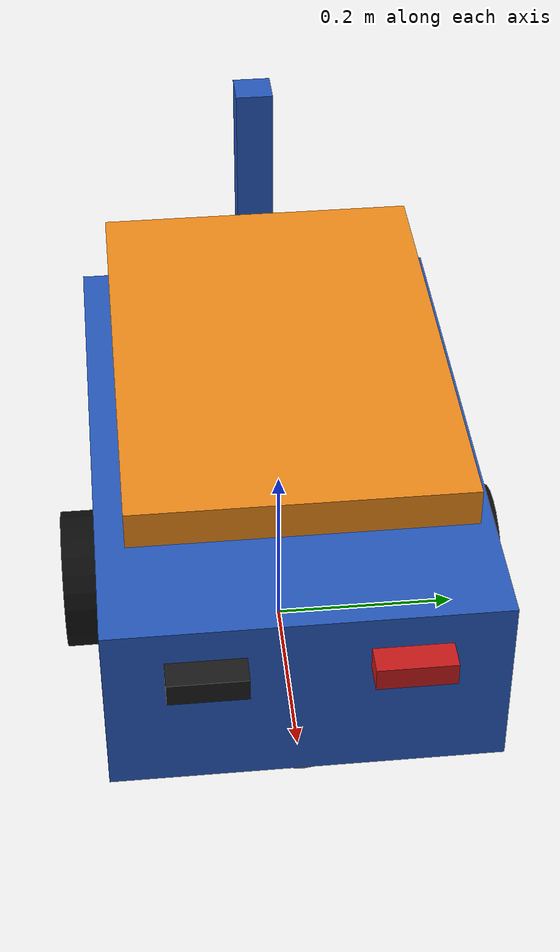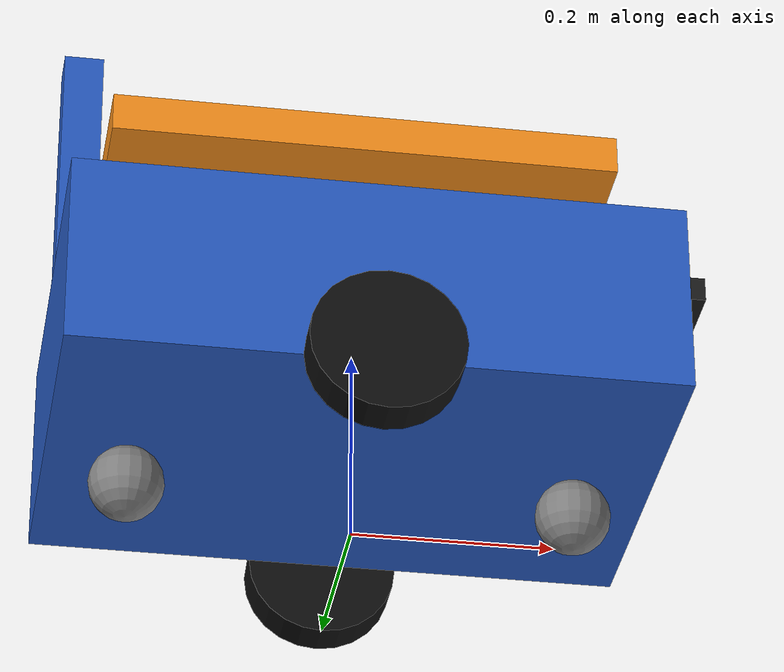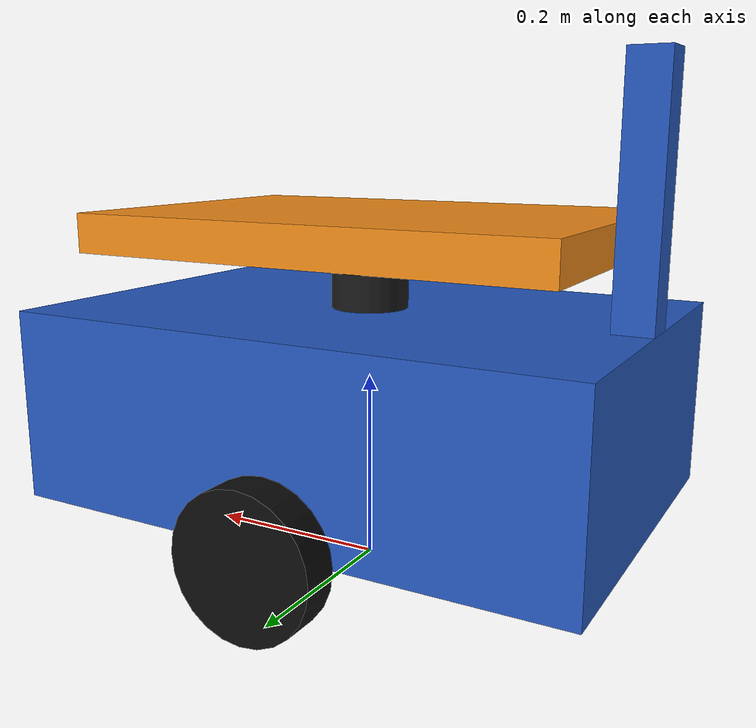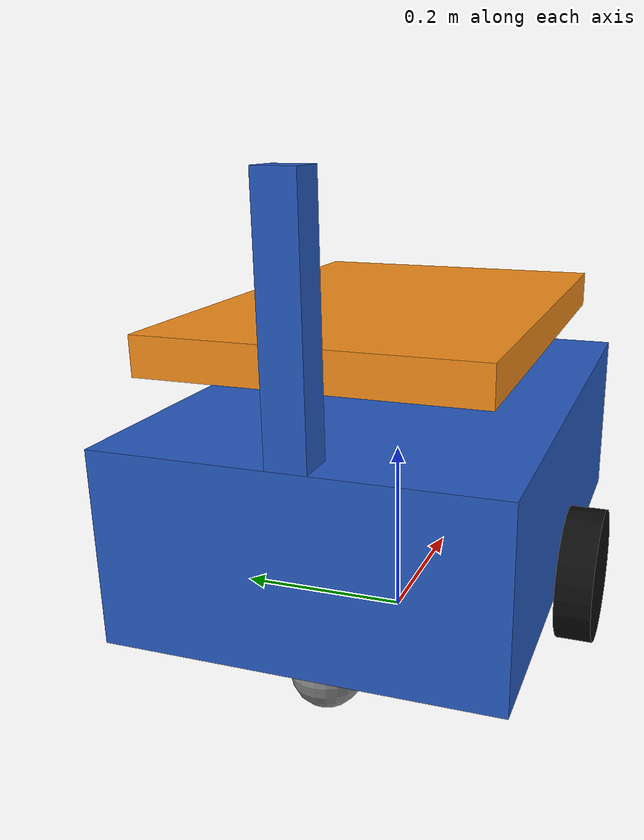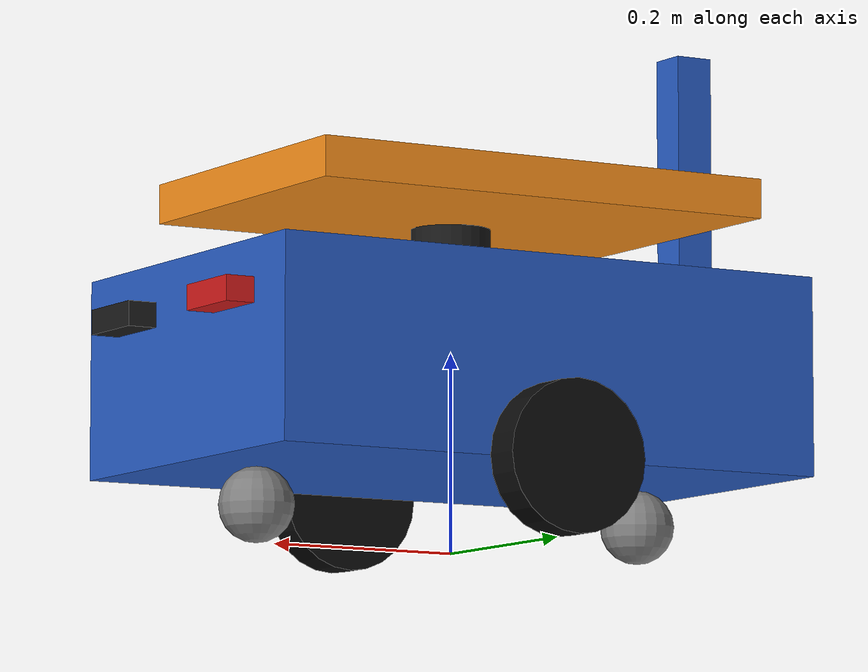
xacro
<?xml version="1.0"?>
<robot xmlns:xacro="http://www.ros.org/wiki/xacro" name="amr">

  <!-- Ortak makrolar ve sabitler -->
  <xacro:include filename="$(find robot_description)/urdf/common/properties.xacro"/>
  <xacro:include filename="$(find robot_description)/urdf/common/materials.xacro"/>
  <xacro:include filename="$(find robot_description)/urdf/common/inertial_macros.xacro"/>

  <!-- Mekanik parçalar -->
  <xacro:include filename="$(find robot_description)/urdf/base/base.xacro"/>
  <xacro:include filename="$(find robot_description)/urdf/wheels/wheels.xacro"/>
  <xacro:include filename="$(find robot_description)/urdf/lift/lift.xacro"/>

  <!-- Sensörler -->
  <xacro:include filename="$(find robot_description)/urdf/sensors/imu.xacro"/>
  <xacro:include filename="$(find robot_description)/urdf/sensors/lidar.xacro"/>
  <xacro:include filename="$(find robot_description)/urdf/sensors/rgb_camera.xacro"/>
  <xacro:include filename="$(find robot_description)/urdf/sensors/depth_camera.xacro"/>

  <!-- ros2_control + ign_ros2_control plugin (cmd_vel, odom, lift, joint_states) -->
  <xacro:include filename="$(find robot_description)/urdf/control/ros2_control.xacro"/>

  <!-- Ground truth odom: Ignition OdometryPublisher → /ground_truth/odom -->
  <xacro:include filename="$(find robot_description)/urdf/gazebo/gazebo_ground_truth.xacro"/>

</robot>

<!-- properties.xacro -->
<robot xmlns:xacro="http://www.ros.org/wiki/xacro">

  <!-- Robot adı (topic prefixleri için) -->
  <xacro:property name="robot_name" value="amr"/>

  <!-- Şasi (base) -->
  <xacro:property name="base_length" value="0.60"/>
  <xacro:property name="base_width"  value="0.40"/>
  <xacro:property name="base_height" value="0.20"/>
  <xacro:property name="base_mass"   value="15.0"/>

  <!-- Tahrik tekerlekleri -->
  <xacro:property name="wheel_radius"     value="0.075"/>
  <xacro:property name="wheel_width"      value="0.04"/>
  <xacro:property name="wheel_mass"       value="0.5"/>
  <xacro:property name="wheel_separation" value="0.44"/>  <!-- base_width(0.40) + wheel_width(0.04): iç kenar tam base kenarında -->
  <xacro:property name="wheel_x_offset"   value="0.0"/>

  <!-- Caster (topuk) tekerlekleri (önde ve arkada küresel destek) -->
  <xacro:property name="caster_radius" value="0.0375"/>  <!-- wheel_radius/2: üst yüzey chassis altına tam değer, alt yüzey zemine tam değer -->
  <xacro:property name="caster_mass"   value="0.1"/>
  <xacro:property name="caster_x_offset" value="0.22"/>

  <!-- Lift platformu -->
  <xacro:property name="lift_length" value="0.50"/>
  <xacro:property name="lift_width"  value="0.34"/>
  <xacro:property name="lift_height" value="0.04"/>
  <xacro:property name="lift_mass"   value="2.0"/>
  <xacro:property name="lift_min"    value="0.0"/>
  <xacro:property name="lift_max"    value="0.15"/>
  <xacro:property name="lift_effort" value="200.0"/>
  <xacro:property name="lift_velocity" value="0.1"/>

  <!-- Lift başlangıç ofseti: lidar_height(0.05) + boşluk(0.01) = 0.06 -->
  <!-- Lift platformu zemine göre: base_height + lift_z_offset = 0.26'dan başlar -->
  <xacro:property name="lift_z_offset" value="0.06"/>

  <!-- Lift kolonu (chassis üstünden max lift pozisyonuna kadar uzanan direk) -->
  <xacro:property name="lift_column_size"   value="0.04"/>
  <xacro:property name="lift_column_mass"   value="0.5"/>
  <xacro:property name="lift_column_height" value="${lift_z_offset + lift_max + lift_height}"/>

  <!-- LiDAR (2D) -->
  <xacro:property name="lidar_radius" value="0.04"/>
  <xacro:property name="lidar_height" value="0.05"/>
  <xacro:property name="lidar_mass"   value="0.15"/>

  <!-- IMU -->
  <xacro:property name="imu_size" value="0.03"/>
  <xacro:property name="imu_mass" value="0.05"/>

  <!-- Kameralar (RGB ve derinlik aynı boyutta basit kutu) -->
  <xacro:property name="cam_length" value="0.03"/>
  <xacro:property name="cam_width"  value="0.08"/>
  <xacro:property name="cam_height" value="0.025"/>
  <xacro:property name="cam_mass"   value="0.08"/>

</robot>

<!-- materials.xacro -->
<robot xmlns:xacro="http://www.ros.org/wiki/xacro">

  <material name="chassis_blue">
    <color rgba="0.15 0.35 0.75 1.0"/>
  </material>

  <material name="lift_orange">
    <color rgba="0.95 0.55 0.10 1.0"/>
  </material>

  <material name="wheel_black">
    <color rgba="0.05 0.05 0.05 1.0"/>
  </material>

  <material name="caster_grey">
    <color rgba="0.50 0.50 0.50 1.0"/>
  </material>

  <material name="sensor_dark">
    <color rgba="0.10 0.10 0.10 1.0"/>
  </material>

  <material name="sensor_red">
    <color rgba="0.80 0.10 0.10 1.0"/>
  </material>

  <material name="sensor_green">
    <color rgba="0.10 0.70 0.20 1.0"/>
  </material>

</robot>

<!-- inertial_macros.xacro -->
<robot xmlns:xacro="http://www.ros.org/wiki/xacro">

  <xacro:macro name="inertial_box" params="mass x y z *origin">
    <inertial>
      <xacro:insert_block name="origin"/>
      <mass value="${mass}"/>
      <inertia
        ixx="${(1.0/12.0) * mass * (y*y + z*z)}" ixy="0.0" ixz="0.0"
        iyy="${(1.0/12.0) * mass * (x*x + z*z)}" iyz="0.0"
        izz="${(1.0/12.0) * mass * (x*x + y*y)}"/>
    </inertial>
  </xacro:macro>

  <xacro:macro name="inertial_cylinder" params="mass radius length *origin">
    <inertial>
      <xacro:insert_block name="origin"/>
      <mass value="${mass}"/>
      <inertia
        ixx="${(1.0/12.0) * mass * (3.0*radius*radius + length*length)}" ixy="0.0" ixz="0.0"
        iyy="${(1.0/12.0) * mass * (3.0*radius*radius + length*length)}" iyz="0.0"
        izz="${(1.0/2.0)  * mass * radius*radius}"/>
    </inertial>
  </xacro:macro>

  <xacro:macro name="inertial_sphere" params="mass radius *origin">
    <inertial>
      <xacro:insert_block name="origin"/>
      <mass value="${mass}"/>
      <inertia
        ixx="${(2.0/5.0) * mass * radius*radius}" ixy="0.0" ixz="0.0"
        iyy="${(2.0/5.0) * mass * radius*radius}" iyz="0.0"
        izz="${(2.0/5.0) * mass * radius*radius}"/>
    </inertial>
  </xacro:macro>

</robot>

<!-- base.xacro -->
<robot xmlns:xacro="http://www.ros.org/wiki/xacro">

  <link name="base_footprint"/>

  <link name="base_link"/>

  <joint name="base_footprint_joint" type="fixed">
    <parent link="base_footprint"/>
    <child  link="base_link"/>
    <origin xyz="0 0 ${wheel_radius}" rpy="0 0 0"/>
  </joint>

  <link name="chassis_link">
    <visual>
      <origin xyz="0 0 ${base_height/2}" rpy="0 0 0"/>
      <geometry>
        <box size="${base_length} ${base_width} ${base_height}"/>
      </geometry>
      <material name="chassis_blue"/>
    </visual>

    <collision>
      <origin xyz="0 0 ${base_height/2}" rpy="0 0 0"/>
      <geometry>
        <box size="${base_length} ${base_width} ${base_height}"/>
      </geometry>
    </collision>

    <xacro:inertial_box mass="${base_mass}"
                        x="${base_length}" y="${base_width}" z="${base_height}">
      <origin xyz="0 0 ${base_height/2}" rpy="0 0 0"/>
    </xacro:inertial_box>
  </link>

  <joint name="chassis_joint" type="fixed">
    <parent link="base_link"/>
    <child  link="chassis_link"/>
    <origin xyz="0 0 0" rpy="0 0 0"/>
  </joint>

</robot>

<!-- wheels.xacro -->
<robot xmlns:xacro="http://www.ros.org/wiki/xacro">

  <!--
    Tekerlek modülü.
    - 2 adet diferansiyel sürücü tekerleği (sol/sağ, base_link ekseninde)
    - 2 adet küresel caster (ön/arka, denge için)
  -->

  <xacro:macro name="drive_wheel" params="prefix y_reflect">
    <link name="${prefix}_wheel_link">
      <visual>
        <origin xyz="0 0 0" rpy="${pi/2} 0 0"/>
        <geometry>
          <cylinder radius="${wheel_radius}" length="${wheel_width}"/>
        </geometry>
        <material name="wheel_black"/>
      </visual>

      <collision>
        <origin xyz="0 0 0" rpy="${pi/2} 0 0"/>
        <geometry>
          <cylinder radius="${wheel_radius}" length="${wheel_width}"/>
        </geometry>
      </collision>

      <xacro:inertial_cylinder mass="${wheel_mass}"
                               radius="${wheel_radius}" length="${wheel_width}">
        <origin xyz="0 0 0" rpy="${pi/2} 0 0"/>
      </xacro:inertial_cylinder>
    </link>

    <joint name="${prefix}_wheel_joint" type="continuous">
      <parent link="base_link"/>
      <child  link="${prefix}_wheel_link"/>
      <origin xyz="${wheel_x_offset} ${y_reflect * wheel_separation/2} 0" rpy="0 0 0"/>
      <axis xyz="0 1 0"/>
      <dynamics damping="0.05" friction="0.05"/>
    </joint>

    <!-- Gazebo sürtünme parametreleri -->
    <gazebo reference="${prefix}_wheel_link">
      <mu1>1.0</mu1>
      <mu2>1.0</mu2>
      <kp>1000000.0</kp>
      <kd>100.0</kd>
    </gazebo>
  </xacro:macro>

  <xacro:drive_wheel prefix="left"  y_reflect="1"/>
  <xacro:drive_wheel prefix="right" y_reflect="-1"/>

  <xacro:macro name="caster_wheel" params="prefix x_reflect">
    <link name="${prefix}_caster_link">
      <visual>
        <origin xyz="0 0 0" rpy="0 0 0"/>
        <geometry>
          <sphere radius="${caster_radius}"/>
        </geometry>
        <material name="caster_grey"/>
      </visual>

      <collision>
        <origin xyz="0 0 0" rpy="0 0 0"/>
        <geometry>
          <sphere radius="${caster_radius}"/>
        </geometry>
      </collision>

      <xacro:inertial_sphere mass="${caster_mass}" radius="${caster_radius}">
        <origin xyz="0 0 0" rpy="0 0 0"/>
      </xacro:inertial_sphere>
    </link>

    <joint name="${prefix}_caster_joint" type="fixed">
      <parent link="base_link"/>
      <child  link="${prefix}_caster_link"/>
      <origin xyz="${x_reflect * caster_x_offset} 0 ${-(wheel_radius - caster_radius)}"
              rpy="0 0 0"/>
    </joint>

    <gazebo reference="${prefix}_caster_link">
      <mu1>0.001</mu1>
      <mu2>0.001</mu2>
    </gazebo>
  </xacro:macro>

  <xacro:caster_wheel prefix="front" x_reflect="1"/>
  <xacro:caster_wheel prefix="rear"  x_reflect="-1"/>

</robot>

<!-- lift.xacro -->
<robot xmlns:xacro="http://www.ros.org/wiki/xacro">

  <!-- Merkezi direk: en arkada, chassis_link'e sabit -->
  <link name="lift_column_link">
    <visual>
      <origin xyz="0 0 ${lift_column_height/2}" rpy="0 0 0"/>
      <geometry>
        <box size="${lift_column_size} ${lift_column_size} ${lift_column_height}"/>
      </geometry>
      <material name="chassis_blue"/>
    </visual>

    <collision>
      <origin xyz="0 0 ${lift_column_height/2}" rpy="0 0 0"/>
      <geometry>
        <box size="${lift_column_size} ${lift_column_size} ${lift_column_height}"/>
      </geometry>
    </collision>

    <xacro:inertial_box mass="${lift_column_mass}"
                        x="${lift_column_size}" y="${lift_column_size}" z="${lift_column_height}">
      <origin xyz="0 0 ${lift_column_height/2}" rpy="0 0 0"/>
    </xacro:inertial_box>
  </link>

  <joint name="lift_column_joint" type="fixed">
    <parent link="chassis_link"/>
    <child  link="lift_column_link"/>
    <!-- Kolon merkezi: base arka yüzünden lift_column_size/2 içeride, chassis üstünde -->
    <origin xyz="${-(base_length/2 - lift_column_size/2)} 0 ${base_height}" rpy="0 0 0"/>
  </joint>

  <!-- Lift platformu: kolon ön yüzüne temas eden arka kenarıyla öne doğru uzanır -->
  <link name="lift_link">
    <visual>
      <origin xyz="0 0 ${lift_height/2}" rpy="0 0 0"/>
      <geometry>
        <box size="${lift_length} ${lift_width} ${lift_height}"/>
      </geometry>
      <material name="lift_orange"/>
    </visual>

    <collision>
      <origin xyz="0 0 ${lift_height/2}" rpy="0 0 0"/>
      <geometry>
        <box size="${lift_length} ${lift_width} ${lift_height}"/>
      </geometry>
    </collision>

    <xacro:inertial_box mass="${lift_mass}"
                        x="${lift_length}" y="${lift_width}" z="${lift_height}">
      <origin xyz="0 0 ${lift_height/2}" rpy="0 0 0"/>
    </xacro:inertial_box>
  </link>

  <joint name="lift_joint" type="prismatic">
    <parent link="chassis_link"/>
    <child  link="lift_link"/>
    <!-- x: kolon ön yüzeyi(-0.26) + lift_length/2(0.25) = -0.01 -->
    <origin xyz="${lift_length/2 - base_length/2 + lift_column_size} 0 ${base_height + lift_z_offset}"
            rpy="0 0 0"/>
    <axis xyz="0 0 1"/>
    <limit lower="${lift_min}" upper="${lift_max}"
           effort="${lift_effort}" velocity="${lift_velocity}"/>
    <dynamics damping="5.0" friction="0.5"/>
  </joint>

</robot>

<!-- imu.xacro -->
<robot xmlns:xacro="http://www.ros.org/wiki/xacro">

  <!--
    IMU sensörü. Şasinin merkezine, geometri merkezine yakın yerleştirilir.
    Topic: /imu  (sensor_msgs/Imu)
  -->

  <link name="imu_link">
    <visual>
      <origin xyz="0 0 0" rpy="0 0 0"/>
      <geometry>
        <box size="${imu_size} ${imu_size} ${imu_size}"/>
      </geometry>
      <material name="sensor_green"/>
    </visual>

    <collision>
      <origin xyz="0 0 0" rpy="0 0 0"/>
      <geometry>
        <box size="${imu_size} ${imu_size} ${imu_size}"/>
      </geometry>
    </collision>

    <xacro:inertial_box mass="${imu_mass}"
                        x="${imu_size}" y="${imu_size}" z="${imu_size}">
      <origin xyz="0 0 0" rpy="0 0 0"/>
    </xacro:inertial_box>
  </link>

  <joint name="imu_joint" type="fixed">
    <parent link="chassis_link"/>
    <child  link="imu_link"/>
    <origin xyz="0 0 ${base_height/2}" rpy="0 0 0"/>
  </joint>

  <gazebo reference="imu_link">
    <sensor name="imu_sensor" type="imu">
      <always_on>1</always_on>
      <update_rate>100</update_rate>
      <visualize>false</visualize>
      <topic>imu</topic>
      <gz_frame_id>imu_link</gz_frame_id>
      <imu>
        <angular_velocity>
          <x><noise type="gaussian"><mean>0.0</mean><stddev>2e-4</stddev></noise></x>
          <y><noise type="gaussian"><mean>0.0</mean><stddev>2e-4</stddev></noise></y>
          <z><noise type="gaussian"><mean>0.0</mean><stddev>2e-4</stddev></noise></z>
        </angular_velocity>
        <linear_acceleration>
          <x><noise type="gaussian"><mean>0.0</mean><stddev>1.7e-2</stddev></noise></x>
          <y><noise type="gaussian"><mean>0.0</mean><stddev>1.7e-2</stddev></noise></y>
          <z><noise type="gaussian"><mean>0.0</mean><stddev>1.7e-2</stddev></noise></z>
        </linear_acceleration>
      </imu>
    </sensor>
  </gazebo>

</robot>

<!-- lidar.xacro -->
<robot xmlns:xacro="http://www.ros.org/wiki/xacro">

  <!--
    2D LiDAR. Şasinin ön-üst kenarına yerleştirilir; lift platformunun
    altında kaldığı için tam 360° açık görüş alanına sahip olur.
    Topic: /scan  (sensor_msgs/LaserScan)
  -->

  <link name="lidar_link">
    <visual>
      <origin xyz="0 0 0" rpy="0 0 0"/>
      <geometry>
        <cylinder radius="${lidar_radius}" length="${lidar_height}"/>
      </geometry>
      <material name="sensor_dark"/>
    </visual>

    <collision>
      <origin xyz="0 0 0" rpy="0 0 0"/>
      <geometry>
        <cylinder radius="${lidar_radius}" length="${lidar_height}"/>
      </geometry>
    </collision>

    <xacro:inertial_cylinder mass="${lidar_mass}"
                             radius="${lidar_radius}" length="${lidar_height}">
      <origin xyz="0 0 0" rpy="0 0 0"/>
    </xacro:inertial_cylinder>
  </link>

  <joint name="lidar_joint" type="fixed">
    <parent link="chassis_link"/>
    <child  link="lidar_link"/>
    <origin xyz="0 0 ${base_height + lidar_height/2}"
            rpy="0 0 0"/>
  </joint>

  <gazebo reference="lidar_link">
    <sensor name="lidar_sensor" type="gpu_lidar">
      <always_on>1</always_on>
      <!-- 20 Hz: yerinde donerken motion distortion azalir;
           10 Hz'de 1 tarama suresince ~11° donus oluyordu -->
      <update_rate>20</update_rate>
      <visualize>true</visualize>
      <topic>scan</topic>
      <gz_frame_id>lidar_link</gz_frame_id>
      <lidar>
        <scan>
          <horizontal>
            <samples>340</samples>
            <resolution>1</resolution>
            <min_angle>-2.96706</min_angle>
            <max_angle>2.96706</max_angle>
          </horizontal>
        </scan>
        <range>
          <min>0.12</min>
          <max>12.0</max>
          <resolution>0.01</resolution>
        </range>
        <noise>
          <type>gaussian</type>
          <mean>0.0</mean>
          <stddev>0.01</stddev>
        </noise>
      </lidar>
    </sensor>
  </gazebo>

</robot>

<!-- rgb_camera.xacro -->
<robot xmlns:xacro="http://www.ros.org/wiki/xacro">

  <!--
    RGB kamera. Şasinin ön yüzüne, LiDAR'ın altına yerleştirilir.
    REP-103 uyarınca optik frame ayrı tanımlıdır (z ileri, x sağ, y aşağı).
    Topic: /rgb_camera/image_raw  (sensor_msgs/Image)
  -->

  <link name="rgb_camera_link">
    <visual>
      <origin xyz="0 0 0" rpy="0 0 0"/>
      <geometry>
        <box size="${cam_length} ${cam_width} ${cam_height}"/>
      </geometry>
      <material name="sensor_red"/>
    </visual>

    <collision>
      <origin xyz="0 0 0" rpy="0 0 0"/>
      <geometry>
        <box size="${cam_length} ${cam_width} ${cam_height}"/>
      </geometry>
    </collision>

    <xacro:inertial_box mass="${cam_mass}"
                        x="${cam_length}" y="${cam_width}" z="${cam_height}">
      <origin xyz="0 0 0" rpy="0 0 0"/>
    </xacro:inertial_box>
  </link>

  <joint name="rgb_camera_joint" type="fixed">
    <parent link="chassis_link"/>
    <child  link="rgb_camera_link"/>
    <origin xyz="${base_length/2 + cam_length/2} ${base_width/4} ${base_height * 0.75}"
            rpy="0 0 0"/>
  </joint>

  <!-- Optik frame: REP-103 (z forward, x right, y down) -->
  <link name="rgb_camera_optical_link"/>

  <joint name="rgb_camera_optical_joint" type="fixed">
    <parent link="rgb_camera_link"/>
    <child  link="rgb_camera_optical_link"/>
    <origin xyz="0 0 0" rpy="${-pi/2} 0 ${-pi/2}"/>
  </joint>

  <gazebo reference="rgb_camera_link">
    <sensor name="rgb_camera_sensor" type="camera">
      <always_on>1</always_on>
      <update_rate>30</update_rate>
      <visualize>false</visualize>
      <topic>rgb_camera/image_raw</topic>
      <gz_frame_id>rgb_camera_optical_link</gz_frame_id>
      <camera>
        <horizontal_fov>1.0472</horizontal_fov>
        <image>
          <width>640</width>
          <height>480</height>
          <format>R8G8B8</format>
        </image>
        <clip>
          <near>0.1</near>
          <far>50.0</far>
        </clip>
        <noise>
          <type>gaussian</type>
          <mean>0.0</mean>
          <stddev>0.005</stddev>
        </noise>
      </camera>
    </sensor>
  </gazebo>

</robot>

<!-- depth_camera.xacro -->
<robot xmlns:xacro="http://www.ros.org/wiki/xacro">

  <!--
    Derinlik kamerası. RGB kameranın simetrik karşısına yerleştirilir.
    Hem renk (image_raw) hem derinlik (depth/image_raw) ve point cloud yayınlar.
    Topic kökü: /depth_camera/...
  -->

  <link name="depth_camera_link">
    <visual>
      <origin xyz="0 0 0" rpy="0 0 0"/>
      <geometry>
        <box size="${cam_length} ${cam_width} ${cam_height}"/>
      </geometry>
      <material name="sensor_dark"/>
    </visual>

    <collision>
      <origin xyz="0 0 0" rpy="0 0 0"/>
      <geometry>
        <box size="${cam_length} ${cam_width} ${cam_height}"/>
      </geometry>
    </collision>

    <xacro:inertial_box mass="${cam_mass}"
                        x="${cam_length}" y="${cam_width}" z="${cam_height}">
      <origin xyz="0 0 0" rpy="0 0 0"/>
    </xacro:inertial_box>
  </link>

  <joint name="depth_camera_joint" type="fixed">
    <parent link="chassis_link"/>
    <child  link="depth_camera_link"/>
    <origin xyz="${base_length/2 + cam_length/2} ${-base_width/4} ${base_height * 0.75}"
            rpy="0 0 0"/>
  </joint>

  <link name="depth_camera_optical_link"/>

  <joint name="depth_camera_optical_joint" type="fixed">
    <parent link="depth_camera_link"/>
    <child  link="depth_camera_optical_link"/>
    <origin xyz="0 0 0" rpy="${-pi/2} 0 ${-pi/2}"/>
  </joint>

  <gazebo reference="depth_camera_link">
    <sensor name="depth_camera_sensor" type="rgbd_camera">
      <always_on>1</always_on>
      <update_rate>30</update_rate>
      <visualize>false</visualize>
      <topic>depth_camera</topic>
      <gz_frame_id>depth_camera_optical_link</gz_frame_id>
      <camera>
        <horizontal_fov>1.0472</horizontal_fov>
        <image>
          <width>640</width>
          <height>480</height>
          <format>R8G8B8</format>
        </image>
        <clip>
          <near>0.1</near>
          <far>10.0</far>
        </clip>
      </camera>
    </sensor>
  </gazebo>

</robot>
